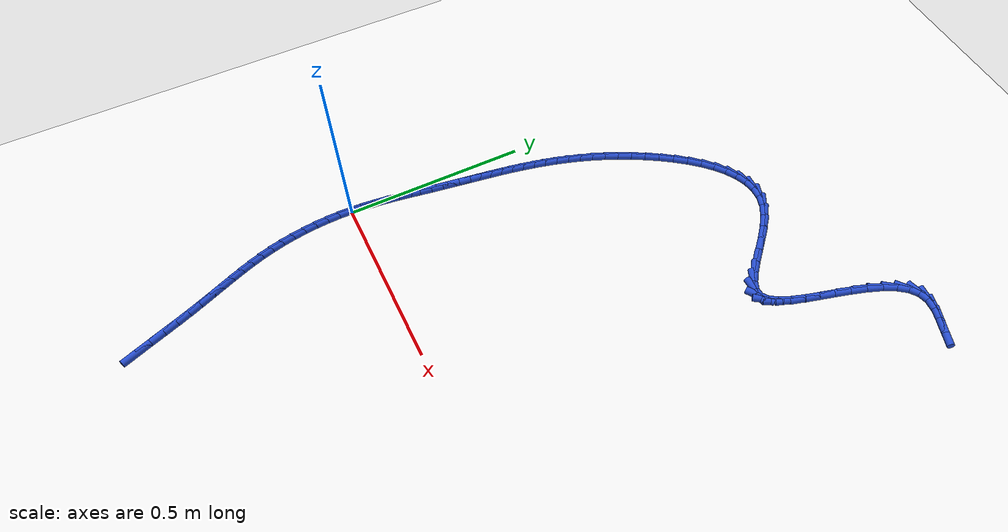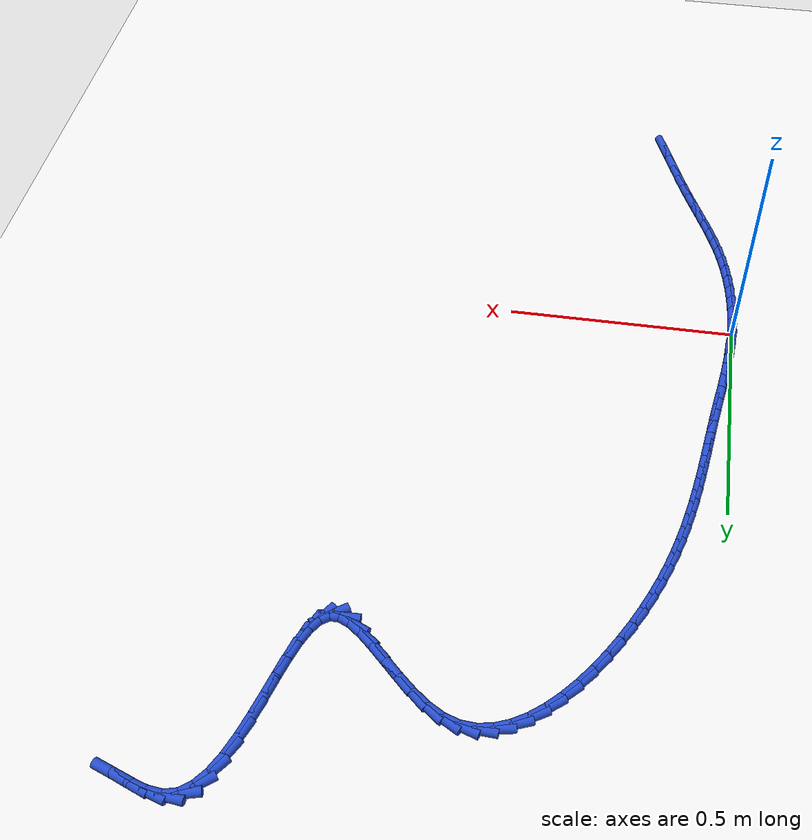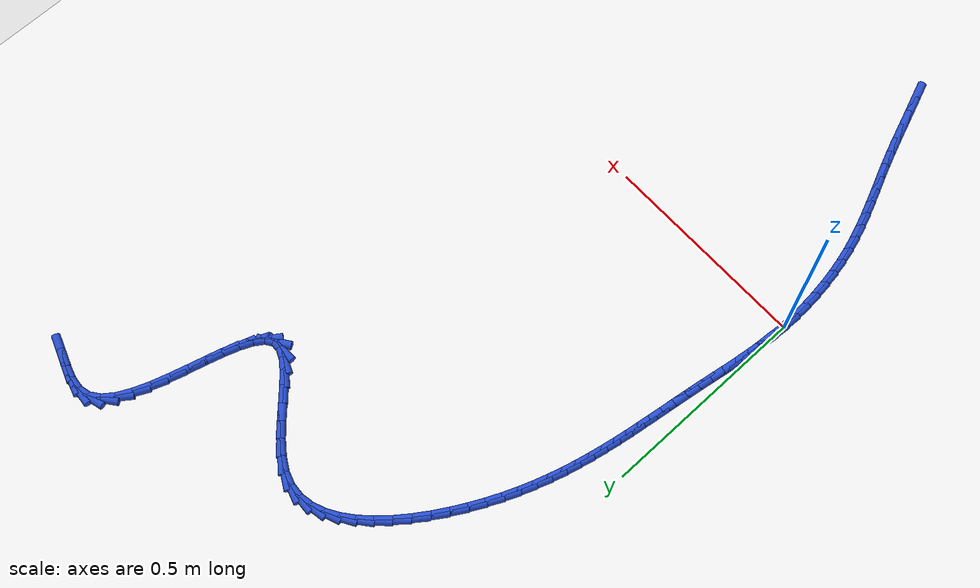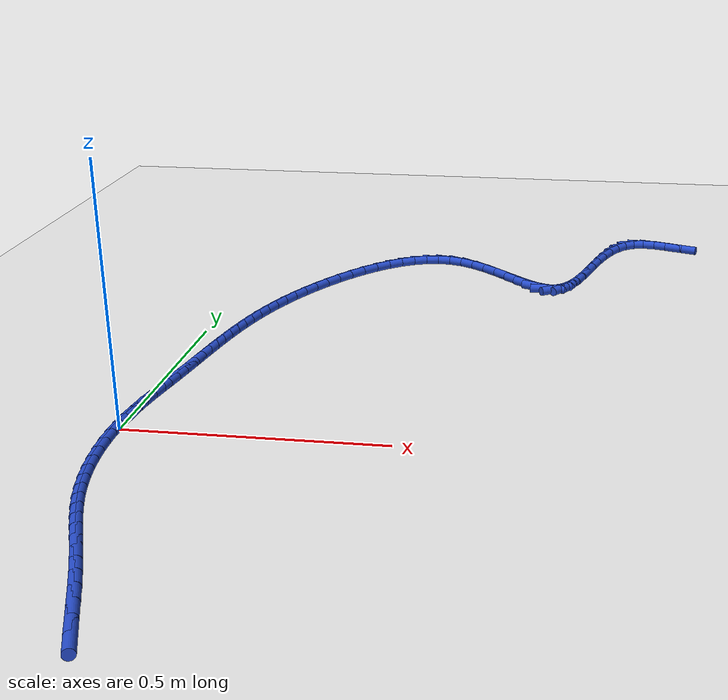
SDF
<sdf version="1.6">
 <world name="default">
  <model name="ground_plane">
   <static>1</static>
   <link name="link">
    <collision name="collision">
     <geometry><plane><normal>0 0 1</normal><size>100 100</size></plane></geometry>
     <surface><friction><ode><mu>100</mu><mu2>50</mu2></ode></friction></surface>
    </collision>
    <visual name="visual">
     <cast_shadows>0</cast_shadows>
     <geometry><plane><normal>0 0 1</normal><size>100 100</size></plane></geometry>
     <material>
      <script><uri>file://media/materials/scripts/gazebo.material</uri><name>Gazebo/WhiteGlow</name></script>
     </material>
    </visual>
   </link>
  </model>
  <model name="line">
   <link name="link_0">
    <pose>-1.5612511283791264e-17 2.7755575615628914e-17 0.01 0 1.57 1.520571812726216</pose>
    <collision name="collision">
     <geometry><cylinder><radius>0.01</radius><length>0.08</length></cylinder></geometry>
    </collision>
    <visual name="visual">
     <material>
      <script><name>Gazebo/Blue</name><uri>file://media/materials/scripts/gazebo.material</uri></script>
     </material>
     <geometry><cylinder><radius>0.01</radius><length>0.08</length></cylinder></geometry>
    </visual>
   </link>
   <link name="link_1">
    <pose>0.0017129575458221964 0.03407732304532035 0.01 0 1.57 1.4842601919959186</pose>
    <collision name="collision">
     <geometry><cylinder><radius>0.01</radius><length>0.08</length></cylinder></geometry>
    </collision>
    <visual name="visual">
     <material>
      <script><name>Gazebo/Blue</name><uri>file://media/materials/scripts/gazebo.material</uri></script>
     </material>
     <geometry><cylinder><radius>0.01</radius><length>0.08</length></cylinder></geometry>
    </visual>
   </link>
   <link name="link_2">
    <pose>0.0046525323501623176 0.06796182082317884 0.01 0 1.57 1.4549711656289155</pose>
    <collision name="collision">
     <geometry><cylinder><radius>0.01</radius><length>0.08</length></cylinder></geometry>
    </collision>
    <visual name="visual">
     <material>
      <script><name>Gazebo/Blue</name><uri>file://media/materials/scripts/gazebo.material</uri></script>
     </material>
     <geometry><cylinder><radius>0.01</radius><length>0.08</length></cylinder></geometry>
    </visual>
   </link>
   <link name="link_3">
    <pose>0.008570992994723099 0.10164122392108339 0.01 0 1.57 1.43272845077841</pose>
    <collision name="collision">
     <geometry><cylinder><radius>0.01</radius><length>0.08</length></cylinder></geometry>
    </collision>
    <visual name="visual">
     <material>
      <script><name>Gazebo/Blue</name><uri>file://media/materials/scripts/gazebo.material</uri></script>
     </material>
     <geometry><cylinder><radius>0.01</radius><length>0.08</length></cylinder></geometry>
    </visual>
   </link>
   <link name="link_4">
    <pose>0.01322060806120728 0.13510326292654193 0.01 0 1.57 1.4175485551472882</pose>
    <collision name="collision">
     <geometry><cylinder><radius>0.01</radius><length>0.08</length></cylinder></geometry>
    </collision>
    <visual name="visual">
     <material>
      <script><name>Gazebo/Blue</name><uri>file://media/materials/scripts/gazebo.material</uri></script>
     </material>
     <geometry><cylinder><radius>0.01</radius><length>0.08</length></cylinder></geometry>
    </visual>
   </link>
   <link name="link_5">
    <pose>0.01835364613131762 0.16833566842706235 0.01 0 1.57 1.4094748795809577</pose>
    <collision name="collision">
     <geometry><cylinder><radius>0.01</radius><length>0.08</length></cylinder></geometry>
    </collision>
    <visual name="visual">
     <material>
      <script><name>Gazebo/Blue</name><uri>file://media/materials/scripts/gazebo.material</uri></script>
     </material>
     <geometry><cylinder><radius>0.01</radius><length>0.08</length></cylinder></geometry>
    </visual>
   </link>
   <link name="link_6">
    <pose>0.02372237578675685 0.2013261710101525 0.01 0 1.57 1.4086023789277209</pose>
    <collision name="collision">
     <geometry><cylinder><radius>0.01</radius><length>0.08</length></cylinder></geometry>
    </collision>
    <visual name="visual">
     <material>
      <script><name>Gazebo/Blue</name><uri>file://media/materials/scripts/gazebo.material</uri></script>
     </material>
     <geometry><cylinder><radius>0.01</radius><length>0.08</length></cylinder></geometry>
    </visual>
   </link>
   <link name="link_7">
    <pose>0.029079065609227732 0.23406250126332023 0.01 0 1.57 1.4147755472724906</pose>
    <collision name="collision">
     <geometry><cylinder><radius>0.01</radius><length>0.08</length></cylinder></geometry>
    </collision>
    <visual name="visual">
     <material>
      <script><name>Gazebo/Blue</name><uri>file://media/materials/scripts/gazebo.material</uri></script>
     </material>
     <geometry><cylinder><radius>0.01</radius><length>0.08</length></cylinder></geometry>
    </visual>
   </link>
   <link name="link_8">
    <pose>0.03418682468213099 0.2665341149353378 0.01 0 1.57 1.422314649603854</pose>
    <collision name="collision">
     <geometry><cylinder><radius>0.01</radius><length>0.08</length></cylinder></geometry>
    </collision>
    <visual name="visual">
     <material>
      <script><name>Gazebo/Blue</name><uri>file://media/materials/scripts/gazebo.material</uri></script>
     </material>
     <geometry><cylinder><radius>0.01</radius><length>0.08</length></cylinder></geometry>
    </visual>
   </link>
   <link name="link_9">
    <pose>0.03900757041063666 0.2987621062014356 0.01 0 1.57 1.4260335351261257</pose>
    <collision name="collision">
     <geometry><cylinder><radius>0.01</radius><length>0.08</length></cylinder></geometry>
    </collision>
    <visual name="visual">
     <material>
      <script><name>Gazebo/Blue</name><uri>file://media/materials/scripts/gazebo.material</uri></script>
     </material>
     <geometry><cylinder><radius>0.01</radius><length>0.08</length></cylinder></geometry>
    </visual>
   </link>
   <link name="link_10">
    <pose>0.04367745120620504 0.33079529642064714 0.01 0 1.57 1.4256550575435196</pose>
    <collision name="collision">
     <geometry><cylinder><radius>0.01</radius><length>0.08</length></cylinder></geometry>
    </collision>
    <visual name="visual">
     <material>
      <script><name>Gazebo/Blue</name><uri>file://media/materials/scripts/gazebo.material</uri></script>
     </material>
     <geometry><cylinder><radius>0.01</radius><length>0.08</length></cylinder></geometry>
    </visual>
   </link>
   <link name="link_11">
    <pose>0.048338513671441825 0.36268344559222543 0.01 0 1.57 1.4211263439757893</pose>
    <collision name="collision">
     <geometry><cylinder><radius>0.01</radius><length>0.08</length></cylinder></geometry>
    </collision>
    <visual name="visual">
     <material>
      <script><name>Gazebo/Blue</name><uri>file://media/materials/scripts/gazebo.material</uri></script>
     </material>
     <geometry><cylinder><radius>0.01</radius><length>0.08</length></cylinder></geometry>
    </visual>
   </link>
   <link name="link_12">
    <pose>0.053132804408952745 0.39447631371542347 0.01 0 1.57 1.4124485089330339</pose>
    <collision name="collision">
     <geometry><cylinder><radius>0.01</radius><length>0.08</length></cylinder></geometry>
    </collision>
    <visual name="visual">
     <material>
      <script><name>Gazebo/Blue</name><uri>file://media/materials/scripts/gazebo.material</uri></script>
     </material>
     <geometry><cylinder><radius>0.01</radius><length>0.08</length></cylinder></geometry>
    </visual>
   </link>
   <link name="link_13">
    <pose>0.058202370021343514 0.4262236607894941 0.01 0 1.57 1.3996795672735154</pose>
    <collision name="collision">
     <geometry><cylinder><radius>0.01</radius><length>0.08</length></cylinder></geometry>
    </collision>
    <visual name="visual">
     <material>
      <script><name>Gazebo/Blue</name><uri>file://media/materials/scripts/gazebo.material</uri></script>
     </material>
     <geometry><cylinder><radius>0.01</radius><length>0.08</length></cylinder></geometry>
    </visual>
   </link>
   <link name="link_14">
    <pose>0.06368925711121982 0.45797524681369034 0.01 0 1.57 1.382937457638164</pose>
    <collision name="collision">
     <geometry><cylinder><radius>0.01</radius><length>0.08</length></cylinder></geometry>
    </collision>
    <visual name="visual">
     <material>
      <script><name>Gazebo/Blue</name><uri>file://media/materials/scripts/gazebo.material</uri></script>
     </material>
     <geometry><cylinder><radius>0.01</radius><length>0.08</length></cylinder></geometry>
    </visual>
   </link>
   <link name="link_15">
    <pose>0.06973551228118738 0.4897808317872651 0.01 0 1.57 1.3624026111968137</pose>
    <collision name="collision">
     <geometry><cylinder><radius>0.01</radius><length>0.08</length></cylinder></geometry>
    </collision>
    <visual name="visual">
     <material>
      <script><name>Gazebo/Blue</name><uri>file://media/materials/scripts/gazebo.material</uri></script>
     </material>
     <geometry><cylinder><radius>0.01</radius><length>0.08</length></cylinder></geometry>
    </visual>
   </link>
   <link name="link_16">
    <pose>0.07648318213385195 0.5216901757094716 0.01 0 1.57 1.3383192652040032</pose>
    <collision name="collision">
     <geometry><cylinder><radius>0.01</radius><length>0.08</length></cylinder></geometry>
    </collision>
    <visual name="visual">
     <material>
      <script><name>Gazebo/Blue</name><uri>file://media/materials/scripts/gazebo.material</uri></script>
     </material>
     <geometry><cylinder><radius>0.01</radius><length>0.08</length></cylinder></geometry>
    </visual>
   </link>
   <link name="link_17">
    <pose>0.08407431327181922 0.5537530385795626 0.01 0 1.57 1.310994596529873</pose>
    <collision name="collision">
     <geometry><cylinder><radius>0.01</radius><length>0.08</length></cylinder></geometry>
    </collision>
    <visual name="visual">
     <material>
      <script><name>Gazebo/Blue</name><uri>file://media/materials/scripts/gazebo.material</uri></script>
     </material>
     <geometry><cylinder><radius>0.01</radius><length>0.08</length></cylinder></geometry>
    </visual>
   </link>
   <link name="link_18">
    <pose>0.09265095229769488 0.5860191803967912 0.01 0 1.57 1.2807947972817584</pose>
    <collision name="collision">
     <geometry><cylinder><radius>0.01</radius><length>0.08</length></cylinder></geometry>
    </collision>
    <visual name="visual">
     <material>
      <script><name>Gazebo/Blue</name><uri>file://media/materials/scripts/gazebo.material</uri></script>
     </material>
     <geometry><cylinder><radius>0.01</radius><length>0.08</length></cylinder></geometry>
    </visual>
   </link>
   <link name="link_19">
    <pose>0.10235514581408464 0.6185383611604103 0.01 0 1.57 1.2481374725647716</pose>
    <collision name="collision">
     <geometry><cylinder><radius>0.01</radius><length>0.08</length></cylinder></geometry>
    </collision>
    <visual name="visual">
     <material>
      <script><name>Gazebo/Blue</name><uri>file://media/materials/scripts/gazebo.material</uri></script>
     </material>
     <geometry><cylinder><radius>0.01</radius><length>0.08</length></cylinder></geometry>
    </visual>
   </link>
   <link name="link_20">
    <pose>0.11332894042359427 0.6513603408696728 0.01 0 1.57 1.2134802041225186</pose>
    <collision name="collision">
     <geometry><cylinder><radius>0.01</radius><length>0.08</length></cylinder></geometry>
    </collision>
    <visual name="visual">
     <material>
      <script><name>Gazebo/Blue</name><uri>file://media/materials/scripts/gazebo.material</uri></script>
     </material>
     <geometry><cylinder><radius>0.01</radius><length>0.08</length></cylinder></geometry>
    </visual>
   </link>
   <link name="link_21">
    <pose>0.12571438272882945 0.6845348795238321 0.01 0 1.57 1.177305725559883</pose>
    <collision name="collision">
     <geometry><cylinder><radius>0.01</radius><length>0.08</length></cylinder></geometry>
    </collision>
    <visual name="visual">
     <material>
      <script><name>Gazebo/Blue</name><uri>file://media/materials/scripts/gazebo.material</uri></script>
     </material>
     <geometry><cylinder><radius>0.01</radius><length>0.08</length></cylinder></geometry>
    </visual>
   </link>
   <link name="link_22">
    <pose>0.13965351933239586 0.7181117371221403 0.01 0 1.57 1.140104768636265</pose>
    <collision name="collision">
     <geometry><cylinder><radius>0.01</radius><length>0.08</length></cylinder></geometry>
    </collision>
    <visual name="visual">
     <material>
      <script><name>Gazebo/Blue</name><uri>file://media/materials/scripts/gazebo.material</uri></script>
     </material>
     <geometry><cylinder><radius>0.01</radius><length>0.08</length></cylinder></geometry>
    </visual>
   </link>
   <link name="link_23">
    <pose>0.1552883968368993 0.7521406736638514 0.01 0 1.57 1.1023581114921528</pose>
    <collision name="collision">
     <geometry><cylinder><radius>0.01</radius><length>0.08</length></cylinder></geometry>
    </collision>
    <visual name="visual">
     <material>
      <script><name>Gazebo/Blue</name><uri>file://media/materials/scripts/gazebo.material</uri></script>
     </material>
     <geometry><cylinder><radius>0.01</radius><length>0.08</length></cylinder></geometry>
    </visual>
   </link>
   <link name="link_24">
    <pose>0.1727610618449454 0.7866714491482176 0.01 0 1.57 1.0641385668596526</pose>
    <collision name="collision">
     <geometry><cylinder><radius>0.01</radius><length>0.08</length></cylinder></geometry>
    </collision>
    <visual name="visual">
     <material>
      <script><name>Gazebo/Blue</name><uri>file://media/materials/scripts/gazebo.material</uri></script>
     </material>
     <geometry><cylinder><radius>0.01</radius><length>0.08</length></cylinder></geometry>
    </visual>
   </link>
   <link name="link_25">
    <pose>0.19218164993746326 0.8216648288823318 0.01 0 1.57 1.022818600783752</pose>
    <collision name="collision">
     <geometry><cylinder><radius>0.01</radius><length>0.08</length></cylinder></geometry>
    </collision>
    <visual name="visual">
     <material>
      <script><name>Gazebo/Blue</name><uri>file://media/materials/scripts/gazebo.material</uri></script>
     </material>
     <geometry><cylinder><radius>0.01</radius><length>0.08</length></cylinder></geometry>
    </visual>
   </link>
   <link name="link_26">
    <pose>0.21346499200235272 0.8565369048873673 0.01 0 1.57 0.9757638037013268</pose>
    <collision name="collision">
     <geometry><cylinder><radius>0.01</radius><length>0.08</length></cylinder></geometry>
    </collision>
    <visual name="visual">
     <material>
      <script><name>Gazebo/Blue</name><uri>file://media/materials/scripts/gazebo.material</uri></script>
     </material>
     <geometry><cylinder><radius>0.01</radius><length>0.08</length></cylinder></geometry>
    </visual>
   </link>
   <link name="link_27">
    <pose>0.23645205933200503 0.8904977866862875 0.01 0 1.57 0.920641556662598</pose>
    <collision name="collision">
     <geometry><cylinder><radius>0.01</radius><length>0.08</length></cylinder></geometry>
    </collision>
    <visual name="visual">
     <material>
      <script><name>Gazebo/Blue</name><uri>file://media/materials/scripts/gazebo.material</uri></script>
     </material>
     <geometry><cylinder><radius>0.01</radius><length>0.08</length></cylinder></geometry>
    </visual>
   </link>
   <link name="link_28">
    <pose>0.26098368492149704 0.9227571981131536 0.01 0 1.57 0.854439194632769</pose>
    <collision name="collision">
     <geometry><cylinder><radius>0.01</radius><length>0.08</length></cylinder></geometry>
    </collision>
    <visual name="visual">
     <material>
      <script><name>Gazebo/Blue</name><uri>file://media/materials/scripts/gazebo.material</uri></script>
     </material>
     <geometry><cylinder><radius>0.01</radius><length>0.08</length></cylinder></geometry>
    </visual>
   </link>
   <link name="link_29">
    <pose>0.28690070176590543 0.9525248630020261 0.01 0 1.57 0.773136749138018</pose>
    <collision name="collision">
     <geometry><cylinder><radius>0.01</radius><length>0.08</length></cylinder></geometry>
    </collision>
    <visual name="visual">
     <material>
      <script><name>Gazebo/Blue</name><uri>file://media/materials/scripts/gazebo.material</uri></script>
     </material>
     <geometry><cylinder><radius>0.01</radius><length>0.08</length></cylinder></geometry>
    </visual>
   </link>
   <link name="link_30">
    <pose>0.31404394286030674 0.9790105051869654 0.01 0 1.57 0.6713839524461769</pose>
    <collision name="collision">
     <geometry><cylinder><radius>0.01</radius><length>0.08</length></cylinder></geometry>
    </collision>
    <visual name="visual">
     <material>
      <script><name>Gazebo/Blue</name><uri>file://media/materials/scripts/gazebo.material</uri></script>
     </material>
     <geometry><cylinder><radius>0.01</radius><length>0.08</length></cylinder></geometry>
    </visual>
   </link>
   <link name="link_31">
    <pose>0.342254241199778 1.001423848502033 0.01 0 1.57 0.5424335669392112</pose>
    <collision name="collision">
     <geometry><cylinder><radius>0.01</radius><length>0.08</length></cylinder></geometry>
    </collision>
    <visual name="visual">
     <material>
      <script><name>Gazebo/Blue</name><uri>file://media/materials/scripts/gazebo.material</uri></script>
     </material>
     <geometry><cylinder><radius>0.01</radius><length>0.08</length></cylinder></geometry>
    </visual>
   </link>
   <link name="link_32">
    <pose>0.37137242977939566 1.0189746167812892 0.01 0 1.57 0.3790956595856606</pose>
    <collision name="collision">
     <geometry><cylinder><radius>0.01</radius><length>0.08</length></cylinder></geometry>
    </collision>
    <visual name="visual">
     <material>
      <script><name>Gazebo/Blue</name><uri>file://media/materials/scripts/gazebo.material</uri></script>
     </material>
     <geometry><cylinder><radius>0.01</radius><length>0.08</length></cylinder></geometry>
    </visual>
   </link>
   <link name="link_33">
    <pose>0.4012393415942365 1.0308725338587945 0.01 0 1.57 0.17722220078351983</pose>
    <collision name="collision">
     <geometry><cylinder><radius>0.01</radius><length>0.08</length></cylinder></geometry>
    </collision>
    <visual name="visual">
     <material>
      <script><name>Gazebo/Blue</name><uri>file://media/materials/scripts/gazebo.material</uri></script>
     </material>
     <geometry><cylinder><radius>0.01</radius><length>0.08</length></cylinder></geometry>
    </visual>
   </link>
   <link name="link_34">
    <pose>0.4316958096393773 1.0363273235686101 0.01 0 1.57 -0.05752128626095289</pose>
    <collision name="collision">
     <geometry><cylinder><radius>0.01</radius><length>0.08</length></cylinder></geometry>
    </collision>
    <visual name="visual">
     <material>
      <script><name>Gazebo/Blue</name><uri>file://media/materials/scripts/gazebo.material</uri></script>
     </material>
     <geometry><cylinder><radius>0.01</radius><length>0.08</length></cylinder></geometry>
    </visual>
   </link>
   <link name="link_35">
    <pose>0.4625826669098947 1.0345487097447967 0.01 0 1.57 -0.3045049238478764</pose>
    <collision name="collision">
     <geometry><cylinder><radius>0.01</radius><length>0.08</length></cylinder></geometry>
    </collision>
    <visual name="visual">
     <material>
      <script><name>Gazebo/Blue</name><uri>file://media/materials/scripts/gazebo.material</uri></script>
     </material>
     <geometry><cylinder><radius>0.01</radius><length>0.08</length></cylinder></geometry>
    </visual>
   </link>
   <link name="link_36">
    <pose>0.49374016635433005 1.024756556795236 0.01 0 1.57 -0.5129059545784163</pose>
    <collision name="collision">
     <geometry><cylinder><radius>0.01</radius><length>0.08</length></cylinder></geometry>
    </collision>
    <visual name="visual">
     <material>
      <script><name>Gazebo/Blue</name><uri>file://media/materials/scripts/gazebo.material</uri></script>
     </material>
     <geometry><cylinder><radius>0.01</radius><length>0.08</length></cylinder></geometry>
    </visual>
   </link>
   <link name="link_37">
    <pose>0.5249508695610515 1.0071793094072925 0.01 0 1.57 -0.6450991111193133</pose>
    <collision name="collision">
     <geometry><cylinder><radius>0.01</radius><length>0.08</length></cylinder></geometry>
    </collision>
    <visual name="visual">
     <material>
      <script><name>Gazebo/Blue</name><uri>file://media/materials/scripts/gazebo.material</uri></script>
     </material>
     <geometry><cylinder><radius>0.01</radius><length>0.08</length></cylinder></geometry>
    </visual>
   </link>
   <link name="link_38">
    <pose>0.555891453495628 0.9838965238062652 0.01 0 1.57 -0.7219313332146254</pose>
    <collision name="collision">
     <geometry><cylinder><radius>0.01</radius><length>0.08</length></cylinder></geometry>
    </collision>
    <visual name="visual">
     <material>
      <script><name>Gazebo/Blue</name><uri>file://media/materials/scripts/gazebo.material</uri></script>
     </material>
     <geometry><cylinder><radius>0.01</radius><length>0.08</length></cylinder></geometry>
    </visual>
   </link>
   <link name="link_39">
    <pose>0.5862272475167218 0.9571861389997451 0.01 0 1.57 -0.7585728562040256</pose>
    <collision name="collision">
     <geometry><cylinder><radius>0.01</radius><length>0.08</length></cylinder></geometry>
    </collision>
    <visual name="visual">
     <material>
      <script><name>Gazebo/Blue</name><uri>file://media/materials/scripts/gazebo.material</uri></script>
     </material>
     <geometry><cylinder><radius>0.01</radius><length>0.08</length></cylinder></geometry>
    </visual>
   </link>
   <link name="link_40">
    <pose>0.615623580982995 0.9293260939953212 0.01 0 1.57 -0.7600556323977313</pose>
    <collision name="collision">
     <geometry><cylinder><radius>0.01</radius><length>0.08</length></cylinder></geometry>
    </collision>
    <visual name="visual">
     <material>
      <script><name>Gazebo/Blue</name><uri>file://media/materials/scripts/gazebo.material</uri></script>
     </material>
     <geometry><cylinder><radius>0.01</radius><length>0.08</length></cylinder></geometry>
    </visual>
   </link>
   <link name="link_41">
    <pose>0.6437457832531096 0.9025943278005825 0.01 0 1.57 -0.7215221123712428</pose>
    <collision name="collision">
     <geometry><cylinder><radius>0.01</radius><length>0.08</length></cylinder></geometry>
    </collision>
    <visual name="visual">
     <material>
      <script><name>Gazebo/Blue</name><uri>file://media/materials/scripts/gazebo.material</uri></script>
     </material>
     <geometry><cylinder><radius>0.01</radius><length>0.08</length></cylinder></geometry>
    </visual>
   </link>
   <link name="link_42">
    <pose>0.6702591836857283 0.87926877942312 0.01 0 1.57 -0.6227095495214341</pose>
    <collision name="collision">
     <geometry><cylinder><radius>0.01</radius><length>0.08</length></cylinder></geometry>
    </collision>
    <visual name="visual">
     <material>
      <script><name>Gazebo/Blue</name><uri>file://media/materials/scripts/gazebo.material</uri></script>
     </material>
     <geometry><cylinder><radius>0.01</radius><length>0.08</length></cylinder></geometry>
    </visual>
   </link>
   <link name="link_43">
    <pose>0.6948291116395129 0.8616273878705222 0.01 0 1.57 -0.409644904419674</pose>
    <collision name="collision">
     <geometry><cylinder><radius>0.01</radius><length>0.08</length></cylinder></geometry>
    </collision>
    <visual name="visual">
     <material>
      <script><name>Gazebo/Blue</name><uri>file://media/materials/scripts/gazebo.material</uri></script>
     </material>
     <geometry><cylinder><radius>0.01</radius><length>0.08</length></cylinder></geometry>
    </visual>
   </link>
   <link name="link_44">
    <pose>0.7171208964731258 0.8519480921503794 0.01 0 1.57 0.027998202393448315</pose>
    <collision name="collision">
     <geometry><cylinder><radius>0.01</radius><length>0.08</length></cylinder></geometry>
    </collision>
    <visual name="visual">
     <material>
      <script><name>Gazebo/Blue</name><uri>file://media/materials/scripts/gazebo.material</uri></script>
     </material>
     <geometry><cylinder><radius>0.01</radius><length>0.08</length></cylinder></geometry>
    </visual>
   </link>
   <link name="link_45">
    <pose>0.736801901212656 0.8524992689342822 0.01 0 1.57 0.6056768249851149</pose>
    <collision name="collision">
     <geometry><cylinder><radius>0.01</radius><length>0.08</length></cylinder></geometry>
    </collision>
    <visual name="visual">
     <material>
      <script><name>Gazebo/Blue</name><uri>file://media/materials/scripts/gazebo.material</uri></script>
     </material>
     <geometry><cylinder><radius>0.01</radius><length>0.08</length></cylinder></geometry>
    </visual>
   </link>
   <link name="link_46">
    <pose>0.753809984312621 0.8642774211653742 0.01 0 1.57 0.9668228177981564</pose>
    <collision name="collision">
     <geometry><cylinder><radius>0.01</radius><length>0.08</length></cylinder></geometry>
    </collision>
    <visual name="visual">
     <material>
      <script><name>Gazebo/Blue</name><uri>file://media/materials/scripts/gazebo.material</uri></script>
     </material>
     <geometry><cylinder><radius>0.01</radius><length>0.08</length></cylinder></geometry>
    </visual>
   </link>
   <link name="link_47">
    <pose>0.7686220227294884 0.8857445783734633 0.01 0 1.57 1.148971528005886</pose>
    <collision name="collision">
     <geometry><cylinder><radius>0.01</radius><length>0.08</length></cylinder></geometry>
    </collision>
    <visual name="visual">
     <material>
      <script><name>Gazebo/Blue</name><uri>file://media/materials/scripts/gazebo.material</uri></script>
     </material>
     <geometry><cylinder><radius>0.01</radius><length>0.08</length></cylinder></geometry>
    </visual>
   </link>
   <link name="link_48">
    <pose>0.781778775561127 0.9150623952619275 0.01 0 1.57 1.242297335673481</pose>
    <collision name="collision">
     <geometry><cylinder><radius>0.01</radius><length>0.08</length></cylinder></geometry>
    </collision>
    <visual name="visual">
     <material>
      <script><name>Gazebo/Blue</name><uri>file://media/materials/scripts/gazebo.material</uri></script>
     </material>
     <geometry><cylinder><radius>0.01</radius><length>0.08</length></cylinder></geometry>
    </visual>
   </link>
   <link name="link_49">
    <pose>0.7938210019054054 0.9503925265341445 0.01 0 1.57 1.288252426560456</pose>
    <collision name="collision">
     <geometry><cylinder><radius>0.01</radius><length>0.08</length></cylinder></geometry>
    </collision>
    <visual name="visual">
     <material>
      <script><name>Gazebo/Blue</name><uri>file://media/materials/scripts/gazebo.material</uri></script>
     </material>
     <geometry><cylinder><radius>0.01</radius><length>0.08</length></cylinder></geometry>
    </visual>
   </link>
   <link name="link_50">
    <pose>0.8052894608601919 0.9898966268934922 0.01 0 1.57 1.3039967324472017</pose>
    <collision name="collision">
     <geometry><cylinder><radius>0.01</radius><length>0.08</length></cylinder></geometry>
    </collision>
    <visual name="visual">
     <material>
      <script><name>Gazebo/Blue</name><uri>file://media/materials/scripts/gazebo.material</uri></script>
     </material>
     <geometry><cylinder><radius>0.01</radius><length>0.08</length></cylinder></geometry>
    </visual>
   </link>
   <link name="link_51">
    <pose>0.8167249115233552 1.0317363510433484 0.01 0 1.57 1.295842823364231</pose>
    <collision name="collision">
     <geometry><cylinder><radius>0.01</radius><length>0.08</length></cylinder></geometry>
    </collision>
    <visual name="visual">
     <material>
      <script><name>Gazebo/Blue</name><uri>file://media/materials/scripts/gazebo.material</uri></script>
     </material>
     <geometry><cylinder><radius>0.01</radius><length>0.08</length></cylinder></geometry>
    </visual>
   </link>
   <link name="link_52">
    <pose>0.828668112992764 1.0740733536870914 0.01 0 1.57 1.263905752716108</pose>
    <collision name="collision">
     <geometry><cylinder><radius>0.01</radius><length>0.08</length></cylinder></geometry>
    </collision>
    <visual name="visual">
     <material>
      <script><name>Gazebo/Blue</name><uri>file://media/materials/scripts/gazebo.material</uri></script>
     </material>
     <geometry><cylinder><radius>0.01</radius><length>0.08</length></cylinder></geometry>
    </visual>
   </link>
   <link name="link_53">
    <pose>0.8416598243662866 1.115069289528098 0.01 0 1.57 1.2027897035171078</pose>
    <collision name="collision">
     <geometry><cylinder><radius>0.01</radius><length>0.08</length></cylinder></geometry>
    </collision>
    <visual name="visual">
     <material>
      <script><name>Gazebo/Blue</name><uri>file://media/materials/scripts/gazebo.material</uri></script>
     </material>
     <geometry><cylinder><radius>0.01</radius><length>0.08</length></cylinder></geometry>
    </visual>
   </link>
   <link name="link_54">
    <pose>0.8562408047417918 1.1528858132697468 0.01 0 1.57 1.0995767369907883</pose>
    <collision name="collision">
     <geometry><cylinder><radius>0.01</radius><length>0.08</length></cylinder></geometry>
    </collision>
    <visual name="visual">
     <material>
      <script><name>Gazebo/Blue</name><uri>file://media/materials/scripts/gazebo.material</uri></script>
     </material>
     <geometry><cylinder><radius>0.01</radius><length>0.08</length></cylinder></geometry>
    </visual>
   </link>
   <link name="link_55">
    <pose>0.8729518132171481 1.1856845796154163 0.01 0 1.57 0.929153019846278</pose>
    <collision name="collision">
     <geometry><cylinder><radius>0.01</radius><length>0.08</length></cylinder></geometry>
    </collision>
    <visual name="visual">
     <material>
      <script><name>Gazebo/Blue</name><uri>file://media/materials/scripts/gazebo.material</uri></script>
     </material>
     <geometry><cylinder><radius>0.01</radius><length>0.08</length></cylinder></geometry>
    </visual>
   </link>
   <link name="link_56">
    <pose>0.8923336088902241 1.2116272432684831 0.01 0 1.57 0.6520349129590362</pose>
    <collision name="collision">
     <geometry><cylinder><radius>0.01</radius><length>0.08</length></cylinder></geometry>
    </collision>
    <visual name="visual">
     <material>
      <script><name>Gazebo/Blue</name><uri>file://media/materials/scripts/gazebo.material</uri></script>
     </material>
     <geometry><cylinder><radius>0.01</radius><length>0.08</length></cylinder></geometry>
    </visual>
   </link>
   <link name="link_57">
    <pose>0.914926950858888 1.2288754589323254 0.01 0 1.57 0.2528734939650738</pose>
    <collision name="collision">
     <geometry><cylinder><radius>0.01</radius><length>0.08</length></cylinder></geometry>
    </collision>
    <visual name="visual">
     <material>
      <script><name>Gazebo/Blue</name><uri>file://media/materials/scripts/gazebo.material</uri></script>
     </material>
     <geometry><cylinder><radius>0.01</radius><length>0.08</length></cylinder></geometry>
    </visual>
   </link>
   <link name="link_58">
    <pose>0.9412478402961745 1.2356769089318365 0.01 0 1.57 -0.10010734732079744</pose>
    <collision name="collision">
     <geometry><cylinder><radius>0.01</radius><length>0.08</length></cylinder></geometry>
    </collision>
    <visual name="visual">
     <material>
      <script><name>Gazebo/Blue</name><uri>file://media/materials/scripts/gazebo.material</uri></script>
     </material>
     <geometry><cylinder><radius>0.01</radius><length>0.08</length></cylinder></geometry>
    </visual>
   </link>
   <link name="link_59">
    <pose>0.9711224638908772 1.232676209089458 0.01 0 1.57 -0.28454793795680744</pose>
    <collision name="collision">
     <geometry><cylinder><radius>0.01</radius><length>0.08</length></cylinder></geometry>
    </collision>
    <visual name="visual">
     <material>
      <script><name>Gazebo/Blue</name><uri>file://media/materials/scripts/gazebo.material</uri></script>
     </material>
     <geometry><cylinder><radius>0.01</radius><length>0.08</length></cylinder></geometry>
    </visual>
   </link>
   <link name="link_60">
    <pose>1.0036128406277778 1.2231732676422435 0.01 0 1.57 -0.3528293460210405</pose>
    <collision name="collision">
     <geometry><cylinder><radius>0.01</radius><length>0.08</length></cylinder></geometry>
    </collision>
    <visual name="visual">
     <material>
      <script><name>Gazebo/Blue</name><uri>file://media/materials/scripts/gazebo.material</uri></script>
     </material>
     <geometry><cylinder><radius>0.01</radius><length>0.08</length></cylinder></geometry>
    </visual>
   </link>
   <link name="link_61">
    <pose>1.0377413120587524 1.210605862022813 0.01 0 1.57 -0.337135037643859</pose>
    <collision name="collision">
     <geometry><cylinder><radius>0.01</radius><length>0.08</length></cylinder></geometry>
    </collision>
    <visual name="visual">
     <material>
      <script><name>Gazebo/Blue</name><uri>file://media/materials/scripts/gazebo.material</uri></script>
     </material>
     <geometry><cylinder><radius>0.01</radius><length>0.08</length></cylinder></geometry>
    </visual>
   </link>
   <link name="link_231">
    <pose>0.18299605377474137 -0.6380210060515861 0.01 0 1.57 -1.2077546471632303</pose>
    <collision name="collision">
     <geometry><cylinder><radius>0.01</radius><length>0.08</length></cylinder></geometry>
    </collision>
    <visual name="visual">
     <material>
      <script><name>Gazebo/Blue</name><uri>file://media/materials/scripts/gazebo.material</uri></script>
     </material>
     <geometry><cylinder><radius>0.01</radius><length>0.08</length></cylinder></geometry>
    </visual>
   </link>
   <link name="link_232">
    <pose>0.1680364628012604 -0.598641170184754 0.01 0 1.57 -1.2130386532223443</pose>
    <collision name="collision">
     <geometry><cylinder><radius>0.01</radius><length>0.08</length></cylinder></geometry>
    </collision>
    <visual name="visual">
     <material>
      <script><name>Gazebo/Blue</name><uri>file://media/materials/scripts/gazebo.material</uri></script>
     </material>
     <geometry><cylinder><radius>0.01</radius><length>0.08</length></cylinder></geometry>
    </visual>
   </link>
   <link name="link_233">
    <pose>0.1534821573152581 -0.5597097790625835 0.01 0 1.57 -1.2111648871595022</pose>
    <collision name="collision">
     <geometry><cylinder><radius>0.01</radius><length>0.08</length></cylinder></geometry>
    </collision>
    <visual name="visual">
     <material>
      <script><name>Gazebo/Blue</name><uri>file://media/materials/scripts/gazebo.material</uri></script>
     </material>
     <geometry><cylinder><radius>0.01</radius><length>0.08</length></cylinder></geometry>
    </visual>
   </link>
   <link name="link_234">
    <pose>0.13921430478792857 -0.5217615594509847 0.01 0 1.57 -1.2015063034183846</pose>
    <collision name="collision">
     <geometry><cylinder><radius>0.01</radius><length>0.08</length></cylinder></geometry>
    </collision>
    <visual name="visual">
     <material>
      <script><name>Gazebo/Blue</name><uri>file://media/materials/scripts/gazebo.material</uri></script>
     </material>
     <geometry><cylinder><radius>0.01</radius><length>0.08</length></cylinder></geometry>
    </visual>
   </link>
   <link name="link_235">
    <pose>0.12511407269046573 -0.48533123811586787 0.01 0 1.57 -1.1848052905364994</pose>
    <collision name="collision">
     <geometry><cylinder><radius>0.01</radius><length>0.08</length></cylinder></geometry>
    </collision>
    <visual name="visual">
     <material>
      <script><name>Gazebo/Blue</name><uri>file://media/materials/scripts/gazebo.material</uri></script>
     </material>
     <geometry><cylinder><radius>0.01</radius><length>0.08</length></cylinder></geometry>
    </visual>
   </link>
   <link name="link_236">
    <pose>0.11109700978033522 -0.4508384185617549 0.01 0 1.57 -1.171292174535926</pose>
    <collision name="collision">
     <geometry><cylinder><radius>0.01</radius><length>0.08</length></cylinder></geometry>
    </collision>
    <visual name="visual">
     <material>
      <script><name>Gazebo/Blue</name><uri>file://media/materials/scripts/gazebo.material</uri></script>
     </material>
     <geometry><cylinder><radius>0.01</radius><length>0.08</length></cylinder></geometry>
    </visual>
   </link>
   <link name="link_237">
    <pose>0.09726524765993723 -0.41807794507216944 0.01 0 1.57 -1.1657637213571366</pose>
    <collision name="collision">
     <geometry><cylinder><radius>0.01</radius><length>0.08</length></cylinder></geometry>
    </collision>
    <visual name="visual">
     <material>
      <script><name>Gazebo/Blue</name><uri>file://media/materials/scripts/gazebo.material</uri></script>
     </material>
     <geometry><cylinder><radius>0.01</radius><length>0.08</length></cylinder></geometry>
    </visual>
   </link>
   <link name="link_238">
    <pose>0.0837839129364834 -0.3866337276931025 0.01 0 1.57 -1.1693572339689324</pose>
    <collision name="collision">
     <geometry><cylinder><radius>0.01</radius><length>0.08</length></cylinder></geometry>
    </collision>
    <visual name="visual">
     <material>
      <script><name>Gazebo/Blue</name><uri>file://media/materials/scripts/gazebo.material</uri></script>
     </material>
     <geometry><cylinder><radius>0.01</radius><length>0.08</length></cylinder></geometry>
    </visual>
   </link>
   <link name="link_239">
    <pose>0.0708181811225444 -0.3560895127144726 0.01 0 1.57 -1.1828341623240135</pose>
    <collision name="collision">
     <geometry><cylinder><radius>0.01</radius><length>0.08</length></cylinder></geometry>
    </collision>
    <visual name="visual">
     <material>
      <script><name>Gazebo/Blue</name><uri>file://media/materials/scripts/gazebo.material</uri></script>
     </material>
     <geometry><cylinder><radius>0.01</radius><length>0.08</length></cylinder></geometry>
    </visual>
   </link>
   <link name="link_240">
    <pose>0.05853322773069118 -0.3260290464261987 0.01 0 1.57 -1.2064358458762197</pose>
    <collision name="collision">
     <geometry><cylinder><radius>0.01</radius><length>0.08</length></cylinder></geometry>
    </collision>
    <visual name="visual">
     <material>
      <script><name>Gazebo/Blue</name><uri>file://media/materials/scripts/gazebo.material</uri></script>
     </material>
     <geometry><cylinder><radius>0.01</radius><length>0.08</length></cylinder></geometry>
    </visual>
   </link>
   <link name="link_241">
    <pose>0.04709422827349372 -0.29603607511819763 0.01 0 1.57 -1.2397621398306633</pose>
    <collision name="collision">
     <geometry><cylinder><radius>0.01</radius><length>0.08</length></cylinder></geometry>
    </collision>
    <visual name="visual">
     <material>
      <script><name>Gazebo/Blue</name><uri>file://media/materials/scripts/gazebo.material</uri></script>
     </material>
     <geometry><cylinder><radius>0.01</radius><length>0.08</length></cylinder></geometry>
    </visual>
   </link>
   <link name="link_242">
    <pose>0.036666358263523026 -0.26569434508038847 0.01 0 1.57 -1.2815764378658439</pose>
    <collision name="collision">
     <geometry><cylinder><radius>0.01</radius><length>0.08</length></cylinder></geometry>
    </collision>
    <visual name="visual">
     <material>
      <script><name>Gazebo/Blue</name><uri>file://media/materials/scripts/gazebo.material</uri></script>
     </material>
     <geometry><cylinder><radius>0.01</radius><length>0.08</length></cylinder></geometry>
    </visual>
   </link>
   <link name="link_243">
    <pose>0.027412714446823857 -0.23459628768576743 0.01 0 1.57 -1.3265124461373892</pose>
    <collision name="collision">
     <geometry><cylinder><radius>0.01</radius><length>0.08</length></cylinder></geometry>
    </collision>
    <visual name="visual">
     <material>
      <script><name>Gazebo/Blue</name><uri>file://media/materials/scripts/gazebo.material</uri></script>
     </material>
     <geometry><cylinder><radius>0.01</radius><length>0.08</length></cylinder></geometry>
    </visual>
   </link>
   <link name="link_244">
    <pose>0.019434987356126792 -0.2025908893641325 0.01 0 1.57 -1.369999917485949</pose>
    <collision name="collision">
     <geometry><cylinder><radius>0.01</radius><length>0.08</length></cylinder></geometry>
    </collision>
    <visual name="visual">
     <material>
      <script><name>Gazebo/Blue</name><uri>file://media/materials/scripts/gazebo.material</uri></script>
     </material>
     <geometry><cylinder><radius>0.01</radius><length>0.08</length></cylinder></geometry>
    </visual>
   </link>
   <link name="link_245">
    <pose>0.012764799248284706 -0.16981988168502643 0.01 0 1.57 -1.4123099142222444</pose>
    <collision name="collision">
     <geometry><cylinder><radius>0.01</radius><length>0.08</length></cylinder></geometry>
    </collision>
    <visual name="visual">
     <material>
      <script><name>Gazebo/Blue</name><uri>file://media/materials/scripts/gazebo.material</uri></script>
     </material>
     <geometry><cylinder><radius>0.01</radius><length>0.08</length></cylinder></geometry>
    </visual>
   </link>
   <link name="link_246">
    <pose>0.007429951738957626 -0.13644095885052268 0.01 0 1.57 -1.4539264986471188</pose>
    <collision name="collision">
     <geometry><cylinder><radius>0.01</radius><length>0.08</length></cylinder></geometry>
    </collision>
    <visual name="visual">
     <material>
      <script><name>Gazebo/Blue</name><uri>file://media/materials/scripts/gazebo.material</uri></script>
     </material>
     <geometry><cylinder><radius>0.01</radius><length>0.08</length></cylinder></geometry>
    </visual>
   </link>
   <link name="link_247">
    <pose>0.0034582464438055777 -0.10261181506269465 0.01 0 1.57 -1.4953059668159243</pose>
    <collision name="collision">
     <geometry><cylinder><radius>0.01</radius><length>0.08</length></cylinder></geometry>
    </collision>
    <visual name="visual">
     <material>
      <script><name>Gazebo/Blue</name><uri>file://media/materials/scripts/gazebo.material</uri></script>
     </material>
     <geometry><cylinder><radius>0.01</radius><length>0.08</length></cylinder></geometry>
    </visual>
   </link>
   <link name="link_248">
    <pose>0.0008774849784886026 -0.0684901445236159 0.01 0 1.57 -1.5368882936770438</pose>
    <collision name="collision">
     <geometry><cylinder><radius>0.01</radius><length>0.08</length></cylinder></geometry>
    </collision>
    <visual name="visual">
     <material>
      <script><name>Gazebo/Blue</name><uri>file://media/materials/scripts/gazebo.material</uri></script>
     </material>
     <geometry><cylinder><radius>0.01</radius><length>0.08</length></cylinder></geometry>
    </visual>
   </link>
   <link name="link_249">
    <pose>-0.0002845310413332712 -0.03423364143535988 0.01 0 1.57 1.5624850727809527</pose>
    <collision name="collision">
     <geometry><cylinder><radius>0.01</radius><length>0.08</length></cylinder></geometry>
    </collision>
    <visual name="visual">
     <material>
      <script><name>Gazebo/Blue</name><uri>file://media/materials/scripts/gazebo.material</uri></script>
     </material>
     <geometry><cylinder><radius>0.01</radius><length>0.08</length></cylinder></geometry>
    </visual>
   </link>
   <link name="link_250">
    <pose>-1.474514954580286e-17 -6.938893903907228e-17 0.01 0 1.57 1.5191910742261399</pose>
    <collision name="collision">
     <geometry><cylinder><radius>0.01</radius><length>0.08</length></cylinder></geometry>
    </collision>
    <visual name="visual">
     <material>
      <script><name>Gazebo/Blue</name><uri>file://media/materials/scripts/gazebo.material</uri></script>
     </material>
     <geometry><cylinder><radius>0.01</radius><length>0.08</length></cylinder></geometry>
    </visual>
   </link>
   <link name="link_251">
    <pose>0.0017588797181484102 0.03405308558039005 0.01 0 1.57 1.4743723896046</pose>
    <collision name="collision">
     <geometry><cylinder><radius>0.01</radius><length>0.08</length></cylinder></geometry>
    </collision>
    <visual name="visual">
     <material>
      <script><name>Gazebo/Blue</name><uri>file://media/materials/scripts/gazebo.material</uri></script>
     </material>
     <geometry><cylinder><radius>0.01</radius><length>0.08</length></cylinder></geometry>
    </visual>
   </link>
   <link name="link_252">
    <pose>0.005019909728772032 0.06776792110373694 0.01 0 1.57 1.4968563539842352</pose>
    <collision name="collision">
     <geometry><cylinder><radius>0.01</radius><length>0.08</length></cylinder></geometry>
    </collision>
    <visual name="visual">
     <material>
      <script><name>Gazebo/Blue</name><uri>file://media/materials/scripts/gazebo.material</uri></script>
     </material>
     <geometry><cylinder><radius>0.01</radius><length>0.08</length></cylinder></geometry>
    </visual>
   </link>
  </model>
 </world>
</sdf>
